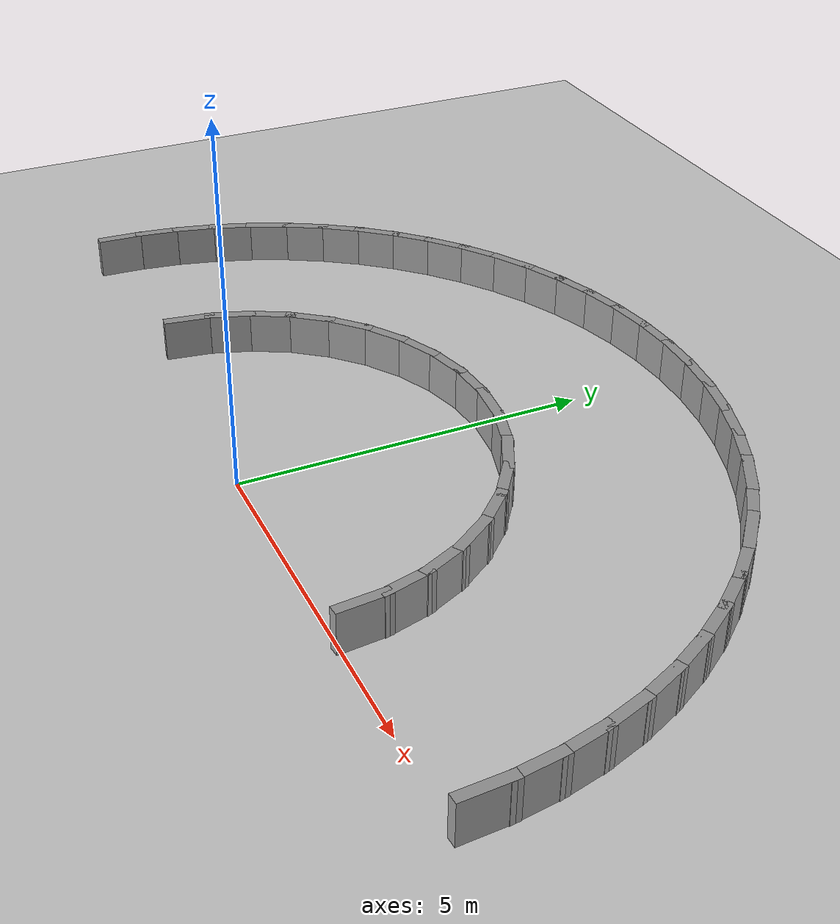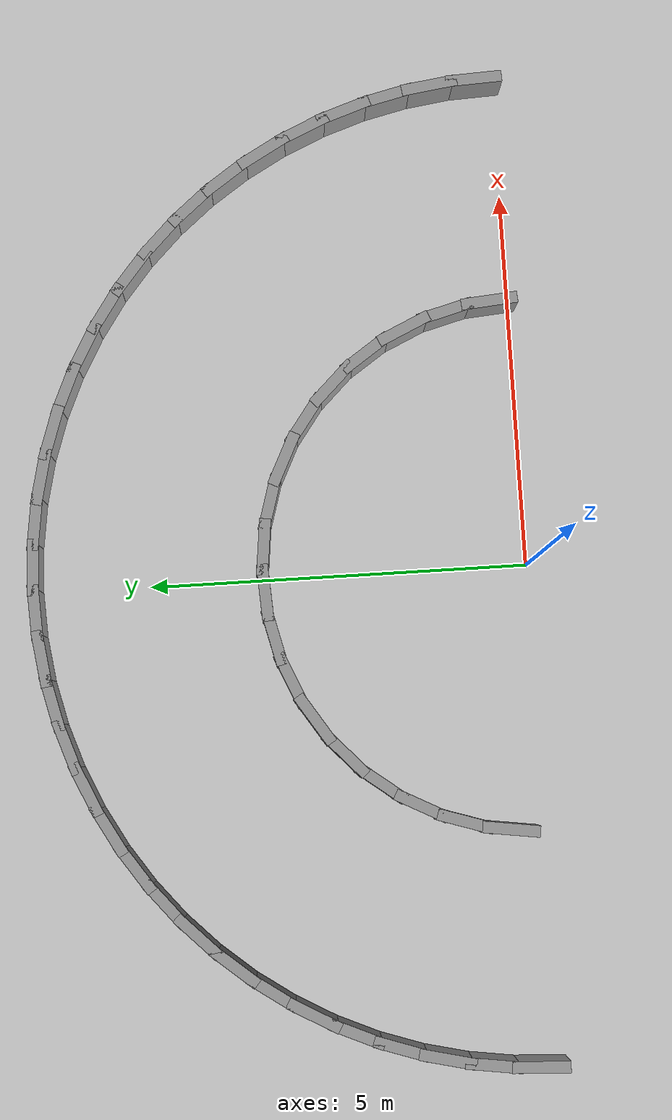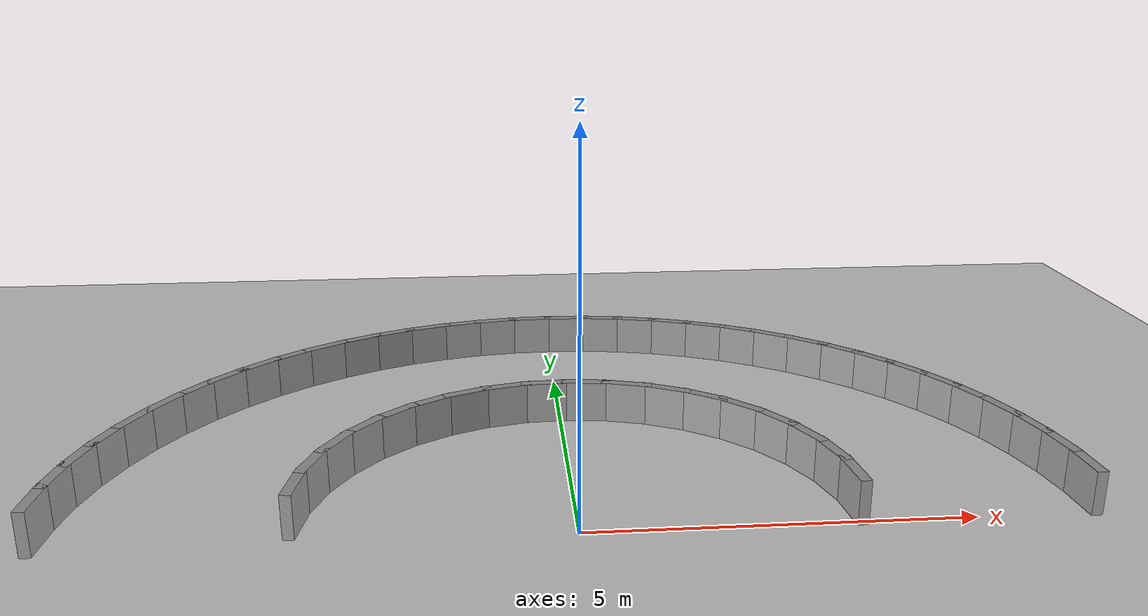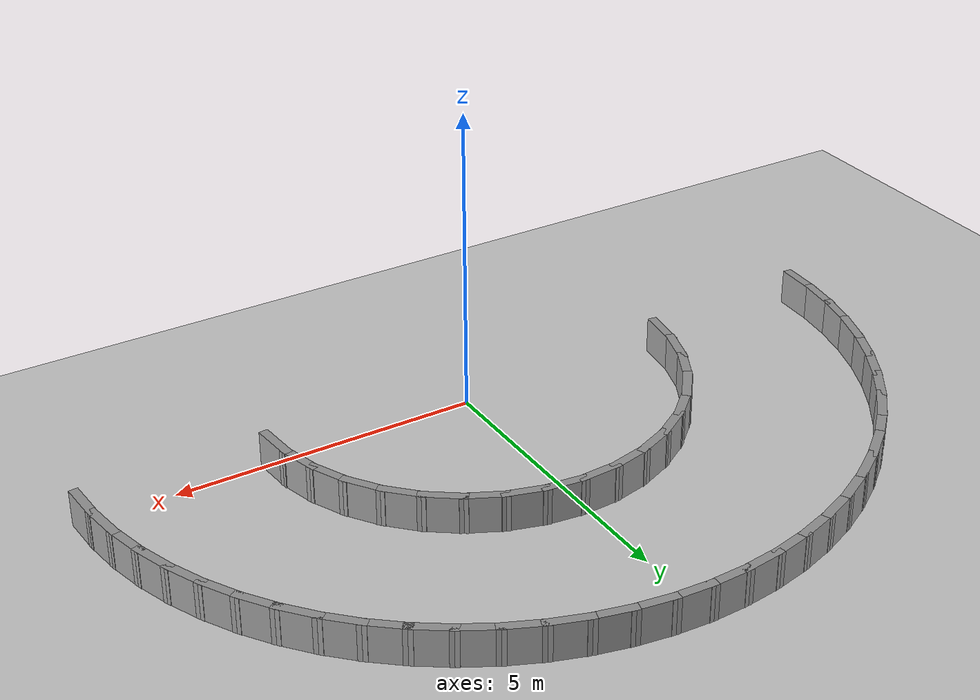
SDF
<sdf version="1.7">
 <world name="default">
  <model name="ground_plane">
   <static>1</static>
   <link name="link">
    <collision name="collision">
     <geometry><plane><normal>0 0 1</normal><size>100 100</size></plane></geometry>
     <surface><friction><ode><mu>100</mu><mu2>50</mu2></ode></friction></surface>
    </collision>
    <visual name="visual">
     <cast_shadows>0</cast_shadows>
     <geometry><plane><normal>0 0 1</normal><size>100 100</size></plane></geometry>
     <material>
      <script><uri>file://media/materials/scripts/gazebo.material</uri><name>Gazebo/Grey</name></script>
     </material>
    </visual>
   </link>
  </model>
  <model name="roundabout_small">
   <link name="Wall_0">
    <collision name="Wall_0_Collision">
     <geometry><box><size>0.7493 0.1500 0.6000</size></box></geometry>
     <pose>0 0 0.3000 0 -0 0</pose>
    </collision>
    <visual name="Wall_0_Visual">
     <pose>0 0 0.3000 0 -0 0</pose>
     <geometry><box><size>0.7493 0.1500 0.6000</size></box></geometry>
     <material>
      <script><uri>file://media/materials/scripts/gazebo.material</uri><name>Gazebo/Grey</name></script>
      <ambient>1 1 1 1</ambient>
     </material>
    </visual>
    <pose>3.4743 0.2985 0 0 -0 1.65653</pose>
   </link>
   <link name="Wall_1">
    <collision name="Wall_1_Collision">
     <geometry><box><size>0.7493 0.1500 0.6000</size></box></geometry>
     <pose>0 0 0.3000 0 -0 0</pose>
    </collision>
    <visual name="Wall_1_Visual">
     <pose>0 0 0.3000 0 -0 0</pose>
     <geometry><box><size>0.7493 0.1500 0.6000</size></box></geometry>
     <material>
      <script><uri>file://media/materials/scripts/gazebo.material</uri><name>Gazebo/Grey</name></script>
      <ambient>1 1 1 1</ambient>
     </material>
    </visual>
    <pose>3.3725 0.8868 0 0 -0 1.82794</pose>
   </link>
   <link name="Wall_2">
    <collision name="Wall_2_Collision">
     <geometry><box><size>0.7493 0.1500 0.6000</size></box></geometry>
     <pose>0 0 0.3000 0 -0 0</pose>
    </collision>
    <visual name="Wall_2_Visual">
     <pose>0 0 0.3000 0 -0 0</pose>
     <geometry><box><size>0.7493 0.1500 0.6000</size></box></geometry>
     <material>
      <script><uri>file://media/materials/scripts/gazebo.material</uri><name>Gazebo/Grey</name></script>
      <ambient>1 1 1 1</ambient>
     </material>
    </visual>
    <pose>3.1718 1.4492 0 0 -0 1.99935</pose>
   </link>
   <link name="Wall_3">
    <collision name="Wall_3_Collision">
     <geometry><box><size>0.7493 0.1500 0.6000</size></box></geometry>
     <pose>0 0 0.3000 0 -0 0</pose>
    </collision>
    <visual name="Wall_3_Visual">
     <pose>0 0 0.3000 0 -0 0</pose>
     <geometry><box><size>0.7493 0.1500 0.6000</size></box></geometry>
     <material>
      <script><uri>file://media/materials/scripts/gazebo.material</uri><name>Gazebo/Grey</name></script>
      <ambient>1 1 1 1</ambient>
     </material>
    </visual>
    <pose>2.8781 1.9690 0 0 -0 2.17080</pose>
   </link>
   <link name="Wall_4">
    <collision name="Wall_4_Collision">
     <geometry><box><size>0.7493 0.1500 0.6000</size></box></geometry>
     <pose>0 0 0.3000 0 -0 0</pose>
    </collision>
    <visual name="Wall_4_Visual">
     <pose>0 0 0.3000 0 -0 0</pose>
     <geometry><box><size>0.7493 0.1500 0.6000</size></box></geometry>
     <material>
      <script><uri>file://media/materials/scripts/gazebo.material</uri><name>Gazebo/Grey</name></script>
      <ambient>1 1 1 1</ambient>
     </material>
    </visual>
    <pose>2.5000 2.4311 0 0 -0 2.34224</pose>
   </link>
   <link name="Wall_5">
    <collision name="Wall_5_Collision">
     <geometry><box><size>0.7493 0.1500 0.6000</size></box></geometry>
     <pose>0 0 0.3000 0 -0 0</pose>
    </collision>
    <visual name="Wall_5_Visual">
     <pose>0 0 0.3000 0 -0 0</pose>
     <geometry><box><size>0.7493 0.1500 0.6000</size></box></geometry>
     <material>
      <script><uri>file://media/materials/scripts/gazebo.material</uri><name>Gazebo/Grey</name></script>
      <ambient>1 1 1 1</ambient>
     </material>
    </visual>
    <pose>2.0486 2.8219 0 0 -0 2.51365</pose>
   </link>
   <link name="Wall_6">
    <collision name="Wall_6_Collision">
     <geometry><box><size>0.7493 0.1500 0.6000</size></box></geometry>
     <pose>0 0 0.3000 0 -0 0</pose>
    </collision>
    <visual name="Wall_6_Visual">
     <pose>0 0 0.3000 0 -0 0</pose>
     <geometry><box><size>0.7493 0.1500 0.6000</size></box></geometry>
     <material>
      <script><uri>file://media/materials/scripts/gazebo.material</uri><name>Gazebo/Grey</name></script>
      <ambient>1 1 1 1</ambient>
     </material>
    </visual>
    <pose>1.5372 3.1300 0 0 -0 2.68506</pose>
   </link>
   <link name="Wall_7">
    <collision name="Wall_7_Collision">
     <geometry><box><size>0.7493 0.1500 0.6000</size></box></geometry>
     <pose>0 0 0.3000 0 -0 0</pose>
    </collision>
    <visual name="Wall_7_Visual">
     <pose>0 0 0.3000 0 -0 0</pose>
     <geometry><box><size>0.7493 0.1500 0.6000</size></box></geometry>
     <material>
      <script><uri>file://media/materials/scripts/gazebo.material</uri><name>Gazebo/Grey</name></script>
      <ambient>1 1 1 1</ambient>
     </material>
    </visual>
    <pose>0.9807 3.3464 0 0 -0 2.85653</pose>
   </link>
   <link name="Wall_8">
    <collision name="Wall_8_Collision">
     <geometry><box><size>0.7493 0.1500 0.6000</size></box></geometry>
     <pose>0 0 0.3000 0 -0 0</pose>
    </collision>
    <visual name="Wall_8_Visual">
     <pose>0 0 0.3000 0 -0 0</pose>
     <geometry><box><size>0.7493 0.1500 0.6000</size></box></geometry>
     <material>
      <script><uri>file://media/materials/scripts/gazebo.material</uri><name>Gazebo/Grey</name></script>
      <ambient>1 1 1 1</ambient>
     </material>
    </visual>
    <pose>0.3955 3.4646 0 0 -0 3.02795</pose>
   </link>
   <link name="Wall_9">
    <collision name="Wall_9_Collision">
     <geometry><box><size>0.7493 0.1500 0.6000</size></box></geometry>
     <pose>0 0 0.3000 0 -0 0</pose>
    </collision>
    <visual name="Wall_9_Visual">
     <pose>0 0 0.3000 0 -0 0</pose>
     <geometry><box><size>0.7493 0.1500 0.6000</size></box></geometry>
     <material>
      <script><uri>file://media/materials/scripts/gazebo.material</uri><name>Gazebo/Grey</name></script>
      <ambient>1 1 1 1</ambient>
     </material>
    </visual>
    <pose>-0.2014 3.4813 0 0 -0 -3.08383</pose>
   </link>
   <link name="Wall_10">
    <collision name="Wall_10_Collision">
     <geometry><box><size>0.7493 0.1500 0.6000</size></box></geometry>
     <pose>0 0 0.3000 0 -0 0</pose>
    </collision>
    <visual name="Wall_10_Visual">
     <pose>0 0 0.3000 0 -0 0</pose>
     <geometry><box><size>0.7493 0.1500 0.6000</size></box></geometry>
     <material>
      <script><uri>file://media/materials/scripts/gazebo.material</uri><name>Gazebo/Grey</name></script>
      <ambient>1 1 1 1</ambient>
     </material>
    </visual>
    <pose>-0.7923 3.3959 0 0 -0 -2.91239</pose>
   </link>
   <link name="Wall_11">
    <collision name="Wall_11_Collision">
     <geometry><box><size>0.7493 0.1500 0.6000</size></box></geometry>
     <pose>0 0 0.3000 0 -0 0</pose>
    </collision>
    <visual name="Wall_11_Visual">
     <pose>0 0 0.3000 0 -0 0</pose>
     <geometry><box><size>0.7493 0.1500 0.6000</size></box></geometry>
     <material>
      <script><uri>file://media/materials/scripts/gazebo.material</uri><name>Gazebo/Grey</name></script>
      <ambient>1 1 1 1</ambient>
     </material>
    </visual>
    <pose>-1.3600 3.2110 0 0 -0 -2.74094</pose>
   </link>
   <link name="Wall_12">
    <collision name="Wall_12_Collision">
     <geometry><box><size>0.7493 0.1500 0.6000</size></box></geometry>
     <pose>0 0 0.3000 0 -0 0</pose>
    </collision>
    <visual name="Wall_12_Visual">
     <pose>0 0 0.3000 0 -0 0</pose>
     <geometry><box><size>0.7493 0.1500 0.6000</size></box></geometry>
     <material>
      <script><uri>file://media/materials/scripts/gazebo.material</uri><name>Gazebo/Grey</name></script>
      <ambient>1 1 1 1</ambient>
     </material>
    </visual>
    <pose>-1.8878 2.9319 0 0 -0 -2.56953</pose>
   </link>
   <link name="Wall_13">
    <collision name="Wall_13_Collision">
     <geometry><box><size>0.7493 0.1500 0.6000</size></box></geometry>
     <pose>0 0 0.3000 0 -0 0</pose>
    </collision>
    <visual name="Wall_13_Visual">
     <pose>0 0 0.3000 0 -0 0</pose>
     <geometry><box><size>0.7493 0.1500 0.6000</size></box></geometry>
     <material>
      <script><uri>file://media/materials/scripts/gazebo.material</uri><name>Gazebo/Grey</name></script>
      <ambient>1 1 1 1</ambient>
     </material>
    </visual>
    <pose>-2.3603 2.5669 0 0 -0 -2.39812</pose>
   </link>
   <link name="Wall_14">
    <collision name="Wall_14_Collision">
     <geometry><box><size>0.7493 0.1500 0.6000</size></box></geometry>
     <pose>0 0 0.3000 0 -0 0</pose>
    </collision>
    <visual name="Wall_14_Visual">
     <pose>0 0 0.3000 0 -0 0</pose>
     <geometry><box><size>0.7493 0.1500 0.6000</size></box></geometry>
     <material>
      <script><uri>file://media/materials/scripts/gazebo.material</uri><name>Gazebo/Grey</name></script>
      <ambient>1 1 1 1</ambient>
     </material>
    </visual>
    <pose>-2.7636 2.1266 0 0 -0 -2.22665</pose>
   </link>
   <link name="Wall_15">
    <collision name="Wall_15_Collision">
     <geometry><box><size>0.7493 0.1500 0.6000</size></box></geometry>
     <pose>0 0 0.3000 0 -0 0</pose>
    </collision>
    <visual name="Wall_15_Visual">
     <pose>0 0 0.3000 0 -0 0</pose>
     <geometry><box><size>0.7493 0.1500 0.6000</size></box></geometry>
     <material>
      <script><uri>file://media/materials/scripts/gazebo.material</uri><name>Gazebo/Grey</name></script>
      <ambient>1 1 1 1</ambient>
     </material>
    </visual>
    <pose>-3.0859 1.6240 0 0 -0 -2.05524</pose>
   </link>
   <link name="Wall_16">
    <collision name="Wall_16_Collision">
     <geometry><box><size>0.7493 0.1500 0.6000</size></box></geometry>
     <pose>0 0 0.3000 0 -0 0</pose>
    </collision>
    <visual name="Wall_16_Visual">
     <pose>0 0 0.3000 0 -0 0</pose>
     <geometry><box><size>0.7493 0.1500 0.6000</size></box></geometry>
     <material>
      <script><uri>file://media/materials/scripts/gazebo.material</uri><name>Gazebo/Grey</name></script>
      <ambient>1 1 1 1</ambient>
     </material>
    </visual>
    <pose>-3.3177 1.0738 0 0 -0 -1.88382</pose>
   </link>
   <link name="Wall_17">
    <collision name="Wall_17_Collision">
     <geometry><box><size>0.7493 0.1500 0.6000</size></box></geometry>
     <pose>0 0 0.3000 0 -0 0</pose>
    </collision>
    <visual name="Wall_17_Visual">
     <pose>0 0 0.3000 0 -0 0</pose>
     <geometry><box><size>0.7493 0.1500 0.6000</size></box></geometry>
     <material>
      <script><uri>file://media/materials/scripts/gazebo.material</uri><name>Gazebo/Grey</name></script>
      <ambient>1 1 1 1</ambient>
     </material>
    </visual>
    <pose>-3.4522 0.4921 0 0 -0 -1.71239</pose>
   </link>
   <link name="Wall_36">
    <collision name="Wall_36_Collision">
     <geometry><box><size>0.7498 0.1500 0.6000</size></box></geometry>
     <pose>0 0 0.3000 0 -0 0</pose>
    </collision>
    <visual name="Wall_36_Visual">
     <pose>0 0 0.3000 0 -0 0</pose>
     <geometry><box><size>0.7498 0.1500 0.6000</size></box></geometry>
     <material>
      <script><uri>file://media/materials/scripts/gazebo.material</uri><name>Gazebo/Grey</name></script>
      <ambient>1 1 1 1</ambient>
     </material>
    </visual>
    <pose>6.4861 0.2996 0 0 -0 1.61700</pose>
   </link>
   <link name="Wall_37">
    <collision name="Wall_37_Collision">
     <geometry><box><size>0.7498 0.1500 0.6000</size></box></geometry>
     <pose>0 0 0.3000 0 -0 0</pose>
    </collision>
    <visual name="Wall_37_Visual">
     <pose>0 0 0.3000 0 -0 0</pose>
     <geometry><box><size>0.7498 0.1500 0.6000</size></box></geometry>
     <material>
      <script><uri>file://media/materials/scripts/gazebo.material</uri><name>Gazebo/Grey</name></script>
      <ambient>1 1 1 1</ambient>
     </material>
    </visual>
    <pose>6.4309 0.8962 0 0 -0 1.70926</pose>
   </link>
   <link name="Wall_38">
    <collision name="Wall_38_Collision">
     <geometry><box><size>0.7498 0.1500 0.6000</size></box></geometry>
     <pose>0 0 0.3000 0 -0 0</pose>
    </collision>
    <visual name="Wall_38_Visual">
     <pose>0 0 0.3000 0 -0 0</pose>
     <geometry><box><size>0.7498 0.1500 0.6000</size></box></geometry>
     <material>
      <script><uri>file://media/materials/scripts/gazebo.material</uri><name>Gazebo/Grey</name></script>
      <ambient>1 1 1 1</ambient>
     </material>
    </visual>
    <pose>6.3209 1.4851 0 0 -0 1.80153</pose>
   </link>
   <link name="Wall_39">
    <collision name="Wall_39_Collision">
     <geometry><box><size>0.7498 0.1500 0.6000</size></box></geometry>
     <pose>0 0 0.3000 0 -0 0</pose>
    </collision>
    <visual name="Wall_39_Visual">
     <pose>0 0 0.3000 0 -0 0</pose>
     <geometry><box><size>0.7498 0.1500 0.6000</size></box></geometry>
     <material>
      <script><uri>file://media/materials/scripts/gazebo.material</uri><name>Gazebo/Grey</name></script>
      <ambient>1 1 1 1</ambient>
     </material>
    </visual>
    <pose>6.1571 2.0615 0 0 -0 1.89390</pose>
   </link>
   <link name="Wall_40">
    <collision name="Wall_40_Collision">
     <geometry><box><size>0.7498 0.1500 0.6000</size></box></geometry>
     <pose>0 0 0.3000 0 -0 0</pose>
    </collision>
    <visual name="Wall_40_Visual">
     <pose>0 0 0.3000 0 -0 0</pose>
     <geometry><box><size>0.7498 0.1500 0.6000</size></box></geometry>
     <material>
      <script><uri>file://media/materials/scripts/gazebo.material</uri><name>Gazebo/Grey</name></script>
      <ambient>1 1 1 1</ambient>
     </material>
    </visual>
    <pose>5.9409 2.6202 0 0 -0 1.98620</pose>
   </link>
   <link name="Wall_41">
    <collision name="Wall_41_Collision">
     <geometry><box><size>0.7498 0.1500 0.6000</size></box></geometry>
     <pose>0 0 0.3000 0 -0 0</pose>
    </collision>
    <visual name="Wall_41_Visual">
     <pose>0 0 0.3000 0 -0 0</pose>
     <geometry><box><size>0.7498 0.1500 0.6000</size></box></geometry>
     <material>
      <script><uri>file://media/materials/scripts/gazebo.material</uri><name>Gazebo/Grey</name></script>
      <ambient>1 1 1 1</ambient>
     </material>
    </visual>
    <pose>5.6741 3.1567 0 0 -0 2.07846</pose>
   </link>
   <link name="Wall_42">
    <collision name="Wall_42_Collision">
     <geometry><box><size>0.7498 0.1500 0.6000</size></box></geometry>
     <pose>0 0 0.3000 0 -0 0</pose>
    </collision>
    <visual name="Wall_42_Visual">
     <pose>0 0 0.3000 0 -0 0</pose>
     <geometry><box><size>0.7498 0.1500 0.6000</size></box></geometry>
     <material>
      <script><uri>file://media/materials/scripts/gazebo.material</uri><name>Gazebo/Grey</name></script>
      <ambient>1 1 1 1</ambient>
     </material>
    </visual>
    <pose>5.3590 3.6663 0 0 -0 2.17080</pose>
   </link>
   <link name="Wall_43">
    <collision name="Wall_43_Collision">
     <geometry><box><size>0.7498 0.1500 0.6000</size></box></geometry>
     <pose>0 0 0.3000 0 -0 0</pose>
    </collision>
    <visual name="Wall_43_Visual">
     <pose>0 0 0.3000 0 -0 0</pose>
     <geometry><box><size>0.7498 0.1500 0.6000</size></box></geometry>
     <material>
      <script><uri>file://media/materials/scripts/gazebo.material</uri><name>Gazebo/Grey</name></script>
      <ambient>1 1 1 1</ambient>
     </material>
    </visual>
    <pose>4.9982 4.1446 0 0 -0 2.26313</pose>
   </link>
   <link name="Wall_44">
    <collision name="Wall_44_Collision">
     <geometry><box><size>0.7498 0.1500 0.6000</size></box></geometry>
     <pose>0 0 0.3000 0 -0 0</pose>
    </collision>
    <visual name="Wall_44_Visual">
     <pose>0 0 0.3000 0 -0 0</pose>
     <geometry><box><size>0.7498 0.1500 0.6000</size></box></geometry>
     <material>
      <script><uri>file://media/materials/scripts/gazebo.material</uri><name>Gazebo/Grey</name></script>
      <ambient>1 1 1 1</ambient>
     </material>
    </visual>
    <pose>4.5949 4.5877 0 0 -0 2.35540</pose>
   </link>
   <link name="Wall_45">
    <collision name="Wall_45_Collision">
     <geometry><box><size>0.7498 0.1500 0.6000</size></box></geometry>
     <pose>0 0 0.3000 0 -0 0</pose>
    </collision>
    <visual name="Wall_45_Visual">
     <pose>0 0 0.3000 0 -0 0</pose>
     <geometry><box><size>0.7498 0.1500 0.6000</size></box></geometry>
     <material>
      <script><uri>file://media/materials/scripts/gazebo.material</uri><name>Gazebo/Grey</name></script>
      <ambient>1 1 1 1</ambient>
     </material>
    </visual>
    <pose>4.1524 4.9917 0 0 -0 2.44770</pose>
   </link>
   <link name="Wall_46">
    <collision name="Wall_46_Collision">
     <geometry><box><size>0.7498 0.1500 0.6000</size></box></geometry>
     <pose>0 0 0.3000 0 -0 0</pose>
    </collision>
    <visual name="Wall_46_Visual">
     <pose>0 0 0.3000 0 -0 0</pose>
     <geometry><box><size>0.7498 0.1500 0.6000</size></box></geometry>
     <material>
      <script><uri>file://media/materials/scripts/gazebo.material</uri><name>Gazebo/Grey</name></script>
      <ambient>1 1 1 1</ambient>
     </material>
    </visual>
    <pose>3.6746 5.3532 0 0 -0 2.54006</pose>
   </link>
   <link name="Wall_47">
    <collision name="Wall_47_Collision">
     <geometry><box><size>0.7498 0.1500 0.6000</size></box></geometry>
     <pose>0 0 0.3000 0 -0 0</pose>
    </collision>
    <visual name="Wall_47_Visual">
     <pose>0 0 0.3000 0 -0 0</pose>
     <geometry><box><size>0.7498 0.1500 0.6000</size></box></geometry>
     <material>
      <script><uri>file://media/materials/scripts/gazebo.material</uri><name>Gazebo/Grey</name></script>
      <ambient>1 1 1 1</ambient>
     </material>
    </visual>
    <pose>3.1655 5.6691 0 0 -0 2.63233</pose>
   </link>
   <link name="Wall_48">
    <collision name="Wall_48_Collision">
     <geometry><box><size>0.7498 0.1500 0.6000</size></box></geometry>
     <pose>0 0 0.3000 0 -0 0</pose>
    </collision>
    <visual name="Wall_48_Visual">
     <pose>0 0 0.3000 0 -0 0</pose>
     <geometry><box><size>0.7498 0.1500 0.6000</size></box></geometry>
     <material>
      <script><uri>file://media/materials/scripts/gazebo.material</uri><name>Gazebo/Grey</name></script>
      <ambient>1 1 1 1</ambient>
     </material>
    </visual>
    <pose>2.6295 5.9368 0 0 -0 2.72460</pose>
   </link>
   <link name="Wall_49">
    <collision name="Wall_49_Collision">
     <geometry><box><size>0.7498 0.1500 0.6000</size></box></geometry>
     <pose>0 0 0.3000 0 -0 0</pose>
    </collision>
    <visual name="Wall_49_Visual">
     <pose>0 0 0.3000 0 -0 0</pose>
     <geometry><box><size>0.7498 0.1500 0.6000</size></box></geometry>
     <material>
      <script><uri>file://media/materials/scripts/gazebo.material</uri><name>Gazebo/Grey</name></script>
      <ambient>1 1 1 1</ambient>
     </material>
    </visual>
    <pose>2.0711 6.1539 0 0 -0 2.81700</pose>
   </link>
   <link name="Wall_50">
    <collision name="Wall_50_Collision">
     <geometry><box><size>0.7498 0.1500 0.6000</size></box></geometry>
     <pose>0 0 0.3000 0 -0 0</pose>
    </collision>
    <visual name="Wall_50_Visual">
     <pose>0 0 0.3000 0 -0 0</pose>
     <geometry><box><size>0.7498 0.1500 0.6000</size></box></geometry>
     <material>
      <script><uri>file://media/materials/scripts/gazebo.material</uri><name>Gazebo/Grey</name></script>
      <ambient>1 1 1 1</ambient>
     </material>
    </visual>
    <pose>1.4950 6.3186 0 0 -0 2.90926</pose>
   </link>
   <link name="Wall_51">
    <collision name="Wall_51_Collision">
     <geometry><box><size>0.7498 0.1500 0.6000</size></box></geometry>
     <pose>0 0 0.3000 0 -0 0</pose>
    </collision>
    <visual name="Wall_51_Visual">
     <pose>0 0 0.3000 0 -0 0</pose>
     <geometry><box><size>0.7498 0.1500 0.6000</size></box></geometry>
     <material>
      <script><uri>file://media/materials/scripts/gazebo.material</uri><name>Gazebo/Grey</name></script>
      <ambient>1 1 1 1</ambient>
     </material>
    </visual>
    <pose>0.9062 6.4295 0 0 -0 3.00153</pose>
   </link>
   <link name="Wall_52">
    <collision name="Wall_52_Collision">
     <geometry><box><size>0.7498 0.1500 0.6000</size></box></geometry>
     <pose>0 0 0.3000 0 -0 0</pose>
    </collision>
    <visual name="Wall_52_Visual">
     <pose>0 0 0.3000 0 -0 0</pose>
     <geometry><box><size>0.7498 0.1500 0.6000</size></box></geometry>
     <material>
      <script><uri>file://media/materials/scripts/gazebo.material</uri><name>Gazebo/Grey</name></script>
      <ambient>1 1 1 1</ambient>
     </material>
    </visual>
    <pose>0.3097 6.4857 0 0 -0 3.09390</pose>
   </link>
   <link name="Wall_53">
    <collision name="Wall_53_Collision">
     <geometry><box><size>0.7498 0.1500 0.6000</size></box></geometry>
     <pose>0 0 0.3000 0 -0 0</pose>
    </collision>
    <visual name="Wall_53_Visual">
     <pose>0 0 0.3000 0 -0 0</pose>
     <geometry><box><size>0.7498 0.1500 0.6000</size></box></geometry>
     <material>
      <script><uri>file://media/materials/scripts/gazebo.material</uri><name>Gazebo/Grey</name></script>
      <ambient>1 1 1 1</ambient>
     </material>
    </visual>
    <pose>-0.2894 6.4866 0 0 -0 -3.09699</pose>
   </link>
   <link name="Wall_54">
    <collision name="Wall_54_Collision">
     <geometry><box><size>0.7498 0.1500 0.6000</size></box></geometry>
     <pose>0 0 0.3000 0 -0 0</pose>
    </collision>
    <visual name="Wall_54_Visual">
     <pose>0 0 0.3000 0 -0 0</pose>
     <geometry><box><size>0.7498 0.1500 0.6000</size></box></geometry>
     <material>
      <script><uri>file://media/materials/scripts/gazebo.material</uri><name>Gazebo/Grey</name></script>
      <ambient>1 1 1 1</ambient>
     </material>
    </visual>
    <pose>-0.8861 6.4323 0 0 -0 -3.00472</pose>
   </link>
   <link name="Wall_55">
    <collision name="Wall_55_Collision">
     <geometry><box><size>0.7498 0.1500 0.6000</size></box></geometry>
     <pose>0 0 0.3000 0 -0 0</pose>
    </collision>
    <visual name="Wall_55_Visual">
     <pose>0 0 0.3000 0 -0 0</pose>
     <geometry><box><size>0.7498 0.1500 0.6000</size></box></geometry>
     <material>
      <script><uri>file://media/materials/scripts/gazebo.material</uri><name>Gazebo/Grey</name></script>
      <ambient>1 1 1 1</ambient>
     </material>
    </visual>
    <pose>-1.4753 6.3232 0 0 -0 -2.91238</pose>
   </link>
   <link name="Wall_56">
    <collision name="Wall_56_Collision">
     <geometry><box><size>0.7498 0.1500 0.6000</size></box></geometry>
     <pose>0 0 0.3000 0 -0 0</pose>
    </collision>
    <visual name="Wall_56_Visual">
     <pose>0 0 0.3000 0 -0 0</pose>
     <geometry><box><size>0.7498 0.1500 0.6000</size></box></geometry>
     <material>
      <script><uri>file://media/materials/scripts/gazebo.material</uri><name>Gazebo/Grey</name></script>
      <ambient>1 1 1 1</ambient>
     </material>
    </visual>
    <pose>-2.0518 6.1603 0 0 -0 -2.82006</pose>
   </link>
   <link name="Wall_57">
    <collision name="Wall_57_Collision">
     <geometry><box><size>0.7498 0.1500 0.6000</size></box></geometry>
     <pose>0 0 0.3000 0 -0 0</pose>
    </collision>
    <visual name="Wall_57_Visual">
     <pose>0 0 0.3000 0 -0 0</pose>
     <geometry><box><size>0.7498 0.1500 0.6000</size></box></geometry>
     <material>
      <script><uri>file://media/materials/scripts/gazebo.material</uri><name>Gazebo/Grey</name></script>
      <ambient>1 1 1 1</ambient>
     </material>
    </visual>
    <pose>-2.6109 5.9450 0 0 -0 -2.72779</pose>
   </link>
   <link name="Wall_58">
    <collision name="Wall_58_Collision">
     <geometry><box><size>0.7498 0.1500 0.6000</size></box></geometry>
     <pose>0 0 0.3000 0 -0 0</pose>
    </collision>
    <visual name="Wall_58_Visual">
     <pose>0 0 0.3000 0 -0 0</pose>
     <geometry><box><size>0.7498 0.1500 0.6000</size></box></geometry>
     <material>
      <script><uri>file://media/materials/scripts/gazebo.material</uri><name>Gazebo/Grey</name></script>
      <ambient>1 1 1 1</ambient>
     </material>
    </visual>
    <pose>-3.1478 5.6790 0 0 -0 -2.63548</pose>
   </link>
   <link name="Wall_59">
    <collision name="Wall_59_Collision">
     <geometry><box><size>0.7498 0.1500 0.6000</size></box></geometry>
     <pose>0 0 0.3000 0 -0 0</pose>
    </collision>
    <visual name="Wall_59_Visual">
     <pose>0 0 0.3000 0 -0 0</pose>
     <geometry><box><size>0.7498 0.1500 0.6000</size></box></geometry>
     <material>
      <script><uri>file://media/materials/scripts/gazebo.material</uri><name>Gazebo/Grey</name></script>
      <ambient>1 1 1 1</ambient>
     </material>
    </visual>
    <pose>-3.6579 5.3647 0 0 -0 -2.54312</pose>
   </link>
   <link name="Wall_60">
    <collision name="Wall_60_Collision">
     <geometry><box><size>0.7498 0.1500 0.6000</size></box></geometry>
     <pose>0 0 0.3000 0 -0 0</pose>
    </collision>
    <visual name="Wall_60_Visual">
     <pose>0 0 0.3000 0 -0 0</pose>
     <geometry><box><size>0.7498 0.1500 0.6000</size></box></geometry>
     <material>
      <script><uri>file://media/materials/scripts/gazebo.material</uri><name>Gazebo/Grey</name></script>
      <ambient>1 1 1 1</ambient>
     </material>
    </visual>
    <pose>-4.1368 5.0047 0 0 -0 -2.45086</pose>
   </link>
   <link name="Wall_61">
    <collision name="Wall_61_Collision">
     <geometry><box><size>0.7498 0.1500 0.6000</size></box></geometry>
     <pose>0 0 0.3000 0 -0 0</pose>
    </collision>
    <visual name="Wall_61_Visual">
     <pose>0 0 0.3000 0 -0 0</pose>
     <geometry><box><size>0.7498 0.1500 0.6000</size></box></geometry>
     <material>
      <script><uri>file://media/materials/scripts/gazebo.material</uri><name>Gazebo/Grey</name></script>
      <ambient>1 1 1 1</ambient>
     </material>
    </visual>
    <pose>-4.5805 4.6020 0 0 -0 -2.35858</pose>
   </link>
   <link name="Wall_62">
    <collision name="Wall_62_Collision">
     <geometry><box><size>0.7498 0.1500 0.6000</size></box></geometry>
     <pose>0 0 0.3000 0 -0 0</pose>
    </collision>
    <visual name="Wall_62_Visual">
     <pose>0 0 0.3000 0 -0 0</pose>
     <geometry><box><size>0.7498 0.1500 0.6000</size></box></geometry>
     <material>
      <script><uri>file://media/materials/scripts/gazebo.material</uri><name>Gazebo/Grey</name></script>
      <ambient>1 1 1 1</ambient>
     </material>
    </visual>
    <pose>-4.9852 4.1602 0 0 -0 -2.26619</pose>
   </link>
   <link name="Wall_63">
    <collision name="Wall_63_Collision">
     <geometry><box><size>0.7498 0.1500 0.6000</size></box></geometry>
     <pose>0 0 0.3000 0 -0 0</pose>
    </collision>
    <visual name="Wall_63_Visual">
     <pose>0 0 0.3000 0 -0 0</pose>
     <geometry><box><size>0.7498 0.1500 0.6000</size></box></geometry>
     <material>
      <script><uri>file://media/materials/scripts/gazebo.material</uri><name>Gazebo/Grey</name></script>
      <ambient>1 1 1 1</ambient>
     </material>
    </visual>
    <pose>-5.3475 3.6830 0 0 -0 -2.17392</pose>
   </link>
   <link name="Wall_64">
    <collision name="Wall_64_Collision">
     <geometry><box><size>0.7498 0.1500 0.6000</size></box></geometry>
     <pose>0 0 0.3000 0 -0 0</pose>
    </collision>
    <visual name="Wall_64_Visual">
     <pose>0 0 0.3000 0 -0 0</pose>
     <geometry><box><size>0.7498 0.1500 0.6000</size></box></geometry>
     <material>
      <script><uri>file://media/materials/scripts/gazebo.material</uri><name>Gazebo/Grey</name></script>
      <ambient>1 1 1 1</ambient>
     </material>
    </visual>
    <pose>-5.6642 3.1744 0 0 -0 -2.08165</pose>
   </link>
   <link name="Wall_65">
    <collision name="Wall_65_Collision">
     <geometry><box><size>0.7498 0.1500 0.6000</size></box></geometry>
     <pose>0 0 0.3000 0 -0 0</pose>
    </collision>
    <visual name="Wall_65_Visual">
     <pose>0 0 0.3000 0 -0 0</pose>
     <geometry><box><size>0.7498 0.1500 0.6000</size></box></geometry>
     <material>
      <script><uri>file://media/materials/scripts/gazebo.material</uri><name>Gazebo/Grey</name></script>
      <ambient>1 1 1 1</ambient>
     </material>
    </visual>
    <pose>-5.9327 2.6388 0 0 -0 -1.98928</pose>
   </link>
   <link name="Wall_66">
    <collision name="Wall_66_Collision">
     <geometry><box><size>0.7498 0.1500 0.6000</size></box></geometry>
     <pose>0 0 0.3000 0 -0 0</pose>
    </collision>
    <visual name="Wall_66_Visual">
     <pose>0 0 0.3000 0 -0 0</pose>
     <geometry><box><size>0.7498 0.1500 0.6000</size></box></geometry>
     <material>
      <script><uri>file://media/materials/scripts/gazebo.material</uri><name>Gazebo/Grey</name></script>
      <ambient>1 1 1 1</ambient>
     </material>
    </visual>
    <pose>-6.1506 2.0807 0 0 -0 -1.89699</pose>
   </link>
   <link name="Wall_67">
    <collision name="Wall_67_Collision">
     <geometry><box><size>0.7498 0.1500 0.6000</size></box></geometry>
     <pose>0 0 0.3000 0 -0 0</pose>
    </collision>
    <visual name="Wall_67_Visual">
     <pose>0 0 0.3000 0 -0 0</pose>
     <geometry><box><size>0.7498 0.1500 0.6000</size></box></geometry>
     <material>
      <script><uri>file://media/materials/scripts/gazebo.material</uri><name>Gazebo/Grey</name></script>
      <ambient>1 1 1 1</ambient>
     </material>
    </visual>
    <pose>-6.3163 1.5049 0 0 -0 -1.80472</pose>
   </link>
   <link name="Wall_68">
    <collision name="Wall_68_Collision">
     <geometry><box><size>0.7498 0.1500 0.6000</size></box></geometry>
     <pose>0 0 0.3000 0 -0 0</pose>
    </collision>
    <visual name="Wall_68_Visual">
     <pose>0 0 0.3000 0 -0 0</pose>
     <geometry><box><size>0.7498 0.1500 0.6000</size></box></geometry>
     <material>
      <script><uri>file://media/materials/scripts/gazebo.material</uri><name>Gazebo/Grey</name></script>
      <ambient>1 1 1 1</ambient>
     </material>
    </visual>
    <pose>-6.4281 0.9163 0 0 -0 -1.71237</pose>
   </link>
   <link name="Wall_69">
    <collision name="Wall_69_Collision">
     <geometry><box><size>0.7498 0.1500 0.6000</size></box></geometry>
     <pose>0 0 0.3000 0 -0 0</pose>
    </collision>
    <visual name="Wall_69_Visual">
     <pose>0 0 0.3000 0 -0 0</pose>
     <geometry><box><size>0.7498 0.1500 0.6000</size></box></geometry>
     <material>
      <script><uri>file://media/materials/scripts/gazebo.material</uri><name>Gazebo/Grey</name></script>
      <ambient>1 1 1 1</ambient>
     </material>
    </visual>
    <pose>-6.4852 0.3198 0 0 -0 -1.62006</pose>
   </link>
   <static>1</static>
  </model>
 </world>
</sdf>
